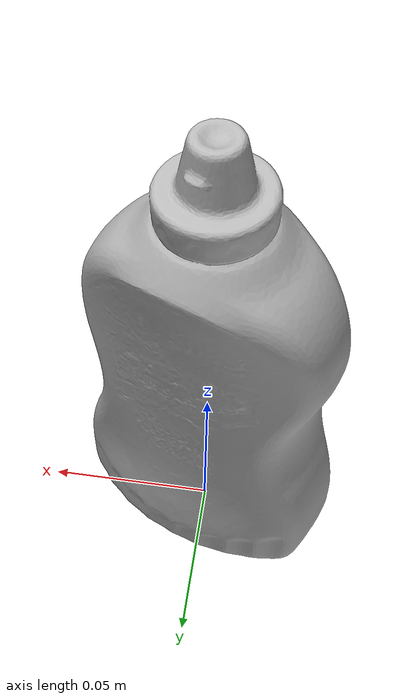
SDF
<?xml version="1.0"?>
<sdf version="1.7">
  <!--
This SDF file was automatically generated using a template modified
and authored by Adwait Naik. The moment of interia is not supposed to be changed.
-->
  <model name="mustard_bottle">
    <pose>0.0 0.0 0.0 0.0 0 0</pose>
    <link name="link">
      <inertial>
        <inertia>
          <ixx>1.6697164243557222e-06</ixx>
          <ixy>-7.608043365683558e-23</ixy>
          <ixz>-8.85497422500391e-24</ixz>
          <iyy>1.454996005383364e-06</iyy>
          <iyz>5.1836699346339805e-24</iyz>
          <izz>4.2928863786736384e-07</izz>
        </inertia>
        <pose>-0.014 -0.021 0.08 0 0.0 1.1</pose>
        <mass>0.01</mass>
      </inertial>
      <collision name="collision">
        <geometry>
          <mesh>
            <uri>model://mustard_bottle/meshes/textured.stl</uri>
            <scale>0.8 0.8 0.8</scale>
          </mesh>
        </geometry>
      </collision>

      <visual name="visual">
        <geometry>
          <mesh>
            <uri>model://mustard_bottle/meshes/textured.dae</uri>
            <scale>0.8 0.8 0.8</scale>
          </mesh>
        </geometry>
      </visual>

    </link>
  </model>
</sdf>
